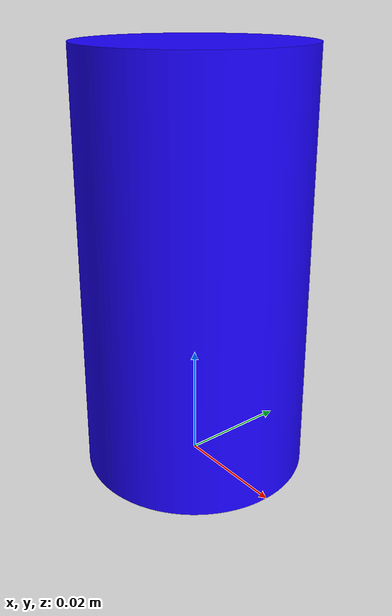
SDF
<sdf version="1.4">
  <model name="med_object">
    <pose>0 0 0 0 0 0</pose>
    <link name="link">
      <visual name="visual">
        <geometry>
          <mesh>
            <uri>model://med_object/meshes/med_object.stl</uri>
            <scale>0.001 0.001 0.001</scale>
          </mesh>
        </geometry>
        <material>
          <ambient>0.1 0 0.2 1</ambient> <!-- Purple Color -->
          <diffuse>0.1 0 1 1</diffuse>
          <specular>0.5 0.5 0.5 1</specular>
          <emissive>0 0 0 1</emissive>
        </material>
      </visual>
      <collision name="collision">
        <geometry>
          <mesh>
            <uri>model://med_object/meshes/med_object.stl</uri>
            <scale>0.001 0.001 0.001</scale>
          </mesh>
        </geometry>
      </collision>
    </link>
  </model>
</sdf>
